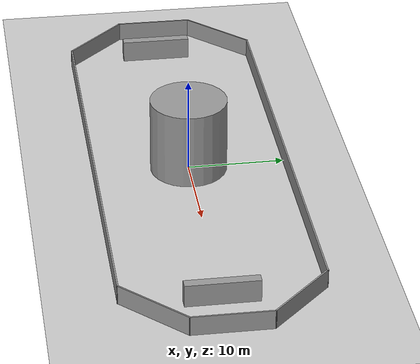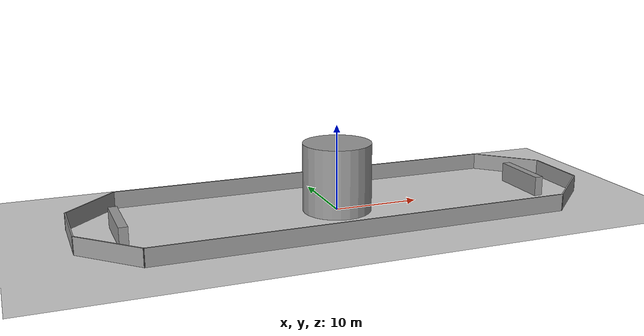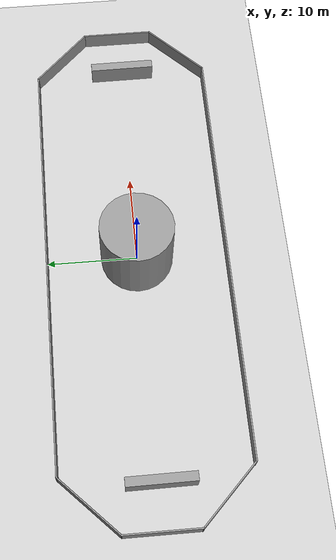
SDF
<sdf version="1.6">
 <world name="default">
  <light name="sun" type="directional">
   <pose>0 0 10 0 -0 0</pose>
   <diffuse>0.8 0.8 0.8 1</diffuse>
   <specular>0.2 0.2 0.2 1</specular>
   <attenuation>
    <range>1000</range>
    <constant>0.9</constant>
    <linear>0.01</linear>
    <quadratic>0.001</quadratic>
   </attenuation>
   <direction>-0.5 0.1 -0.9</direction>
  </light>
  <model name="ground_plane">
   <static>1</static>
   <link name="link">
    <collision name="collision">
     <geometry><plane><normal>0 0 1</normal><size>100 100</size></plane></geometry>
     <surface><friction><ode><mu>100</mu><mu2>50</mu2></ode></friction></surface>
    </collision>
    <visual name="visual">
     <cast_shadows>0</cast_shadows>
     <geometry><plane><normal>0 0 1</normal><size>100 100</size></plane></geometry>
     <material>
      <script><uri>file://media/materials/scripts/gazebo.material</uri><name>Gazebo/Grey</name></script>
     </material>
    </visual>
   </link>
  </model>
  <gravity>0 0 -9.8</gravity>
  <magnetic_field>6e-06 2.3e-05 -4.2e-05</magnetic_field>
  <atmosphere type="adiabatic"/>
  <physics name="default_physics" default="0" type="ode">
   <max_step_size>0.001</max_step_size>
   <real_time_factor>1</real_time_factor>
   <real_time_update_rate>1000</real_time_update_rate>
  </physics>
  <scene><ambient>0.4 0.4 0.4 1</ambient><background>0.7 0.7 0.7 1</background><shadows>1</shadows></scene>
  <spherical_coordinates>
   <surface_model>EARTH_WGS84</surface_model>
   <latitude_deg>0</latitude_deg>
   <longitude_deg>0</longitude_deg>
   <elevation>0</elevation>
   <heading_deg>0</heading_deg>
  </spherical_coordinates>
  <model name="19052514CenterCylin">
   <link name="link">
    <inertial>
     <mass>1</mass>
     <inertia><ixx>0.145833</ixx><ixy>0</ixy><ixz>0</ixz><iyy>0.145833</iyy><iyz>0</iyz><izz>0.125</izz></inertia>
    </inertial>
    <visual name="visual">
     <geometry><cylinder><radius>4</radius><length>8</length></cylinder></geometry>
     <material>
      <script><name>Gazebo/Grey</name><uri>file://media/materials/scripts/gazebo.material</uri></script>
      <shader type="pixel"><normal_map>__default__</normal_map></shader>
      <ambient>1 1 1 1</ambient>
      <diffuse>0.7 0.7 0.7 1</diffuse>
      <specular>0.01 0.01 0.01 1</specular>
      <emissive>0 0 0 1</emissive>
     </material>
    </visual>
    <collision name="collision">
     <geometry><cylinder><radius>4</radius><length>8</length></cylinder></geometry>
     <surface>
      <friction>
       <ode><mu>1</mu><mu2>1</mu2><fdir1>0 0 0</fdir1><slip1>0</slip1><slip2>0</slip2></ode>
       <torsional>
        <coefficient>1</coefficient>
        <patch_radius>0</patch_radius>
        <surface_radius>0</surface_radius>
        <use_patch_radius>1</use_patch_radius>
        <ode><slip>0</slip></ode>
       </torsional>
      </friction>
      <bounce><restitution_coefficient>0</restitution_coefficient><threshold>1e+06</threshold></bounce>
      <contact>
       <collide_without_contact>0</collide_without_contact>
       <collide_without_contact_bitmask>1</collide_without_contact_bitmask>
       <collide_bitmask>1</collide_bitmask>
       <ode>
        <soft_cfm>0</soft_cfm>
        <soft_erp>0.2</soft_erp>
        <kp>1e+13</kp>
        <kd>1</kd>
        <max_vel>0.01</max_vel>
        <min_depth>0</min_depth>
       </ode>
       <bullet>
        <split_impulse>1</split_impulse>
        <split_impulse_penetration_threshold>-0.01</split_impulse_penetration_threshold>
        <soft_cfm>0</soft_cfm>
        <soft_erp>0.2</soft_erp>
        <kp>1e+13</kp>
        <kd>1</kd>
       </bullet>
      </contact>
     </surface>
    </collision>
   </link>
   <static>0</static>
   <pose>-0.000146 -0.000376 4 1e-06 1e-06 8.3e-05</pose>
  </model>
  <model name="19052514EdgeWall_2m">
   <link name="Wall_10">
    <collision name="Wall_10_Collision">
     <geometry><box><size>8.63528 0.15 2</size></box></geometry>
     <pose>0 0 1 0 -0 0</pose>
    </collision>
    <visual name="Wall_10_Visual">
     <pose>0 0 1 0 -0 0</pose>
     <geometry><box><size>8.63528 0.15 2</size></box></geometry>
     <material>
      <script><uri>file://media/materials/scripts/gazebo.material</uri><name>Gazebo/Grey</name></script>
      <ambient>1 1 1 1</ambient>
     </material>
     <meta><layer>0</layer></meta>
    </visual>
    <pose>27 -7 0 0 -0 -2.35619</pose>
   </link>
   <link name="Wall_11">
    <collision name="Wall_11_Collision">
     <geometry><box><size>48.15 0.15 2</size></box></geometry>
     <pose>0 0 1 0 -0 0</pose>
    </collision>
    <visual name="Wall_11_Visual">
     <pose>0 0 1 0 -0 0</pose>
     <geometry><box><size>48.15 0.15 2</size></box></geometry>
     <material>
      <script><uri>file://media/materials/scripts/gazebo.material</uri><name>Gazebo/Grey</name></script>
      <ambient>1 1 1 1</ambient>
     </material>
     <meta><layer>0</layer></meta>
    </visual>
    <pose>0 -10 0 0 -0 3.14159</pose>
   </link>
   <link name="Wall_12">
    <collision name="Wall_12_Collision">
     <geometry><box><size>8.63528 0.15 2</size></box></geometry>
     <pose>0 0 1 0 -0 0</pose>
    </collision>
    <visual name="Wall_12_Visual">
     <pose>0 0 1 0 -0 0</pose>
     <geometry><box><size>8.63528 0.15 2</size></box></geometry>
     <material>
      <script><uri>file://media/materials/scripts/gazebo.material</uri><name>Gazebo/Grey</name></script>
      <ambient>1 1 1 1</ambient>
     </material>
     <meta><layer>0</layer></meta>
    </visual>
    <pose>-27 -7 0 0 -0 2.35619</pose>
   </link>
   <link name="Wall_13">
    <collision name="Wall_13_Collision">
     <geometry><box><size>8.15 0.15 2</size></box></geometry>
     <pose>0 0 1 0 -0 0</pose>
    </collision>
    <visual name="Wall_13_Visual">
     <pose>0 0 1 0 -0 0</pose>
     <geometry><box><size>8.15 0.15 2</size></box></geometry>
     <material>
      <script><uri>file://media/materials/scripts/gazebo.material</uri><name>Gazebo/Grey</name></script>
      <ambient>1 1 1 1</ambient>
     </material>
     <meta><layer>0</layer></meta>
    </visual>
    <pose>-30 0 0 0 -0 1.5708</pose>
   </link>
   <link name="Wall_14">
    <collision name="Wall_14_Collision">
     <geometry><box><size>8.63528 0.15 2</size></box></geometry>
     <pose>0 0 1 0 -0 0</pose>
    </collision>
    <visual name="Wall_14_Visual">
     <pose>0 0 1 0 -0 0</pose>
     <geometry><box><size>8.63528 0.15 2</size></box></geometry>
     <material>
      <script><uri>file://media/materials/scripts/gazebo.material</uri><name>Gazebo/Grey</name></script>
      <ambient>1 1 1 1</ambient>
     </material>
     <meta><layer>0</layer></meta>
    </visual>
    <pose>-27 7 0 0 -0 0.785398</pose>
   </link>
   <link name="Wall_7">
    <collision name="Wall_7_Collision">
     <geometry><box><size>48.15 0.15 2</size></box></geometry>
     <pose>0 0 1 0 -0 0</pose>
    </collision>
    <visual name="Wall_7_Visual">
     <pose>0 0 1 0 -0 0</pose>
     <geometry><box><size>48.15 0.15 2</size></box></geometry>
     <material>
      <script><uri>file://media/materials/scripts/gazebo.material</uri><name>Gazebo/Grey</name></script>
      <ambient>1 1 1 1</ambient>
     </material>
     <meta><layer>0</layer></meta>
    </visual>
    <pose>0 10 0 0 -0 0</pose>
   </link>
   <link name="Wall_8">
    <collision name="Wall_8_Collision">
     <geometry><box><size>8.63528 0.15 2</size></box></geometry>
     <pose>0 0 1 0 -0 0</pose>
    </collision>
    <visual name="Wall_8_Visual">
     <pose>0 0 1 0 -0 0</pose>
     <geometry><box><size>8.63528 0.15 2</size></box></geometry>
     <material>
      <script><uri>file://media/materials/scripts/gazebo.material</uri><name>Gazebo/Grey</name></script>
      <ambient>1 1 1 1</ambient>
     </material>
     <meta><layer>0</layer></meta>
    </visual>
    <pose>27 7 0 0 -0 -0.785398</pose>
   </link>
   <link name="Wall_9">
    <collision name="Wall_9_Collision">
     <geometry><box><size>8.15 0.15 2</size></box></geometry>
     <pose>0 0 1 0 -0 0</pose>
    </collision>
    <visual name="Wall_9_Visual">
     <pose>0 0 1 0 -0 0</pose>
     <geometry><box><size>8.15 0.15 2</size></box></geometry>
     <material>
      <script><uri>file://media/materials/scripts/gazebo.material</uri><name>Gazebo/Grey</name></script>
      <ambient>1 1 1 1</ambient>
     </material>
     <meta><layer>0</layer></meta>
    </visual>
    <pose>30 0 0 0 -0 -1.5708</pose>
   </link>
   <static>1</static>
  </model>
  <model name="unit_box">
   <pose>24.9265 -0.216904 1.15489 -0.002008 1.1e-05 0.005248</pose>
   <link name="link">
    <inertial>
     <mass>1</mass>
     <inertia>
      <ixx>0.166667</ixx>
      <ixy>0</ixy>
      <ixz>0</ixz>
      <iyy>0.166667</iyy>
      <iyz>0</iyz>
      <izz>0.166667</izz>
     </inertia>
    </inertial>
    <collision name="collision"><geometry><box><size>1 7.36817 2.32455</size></box></geometry></collision>
    <visual name="visual">
     <geometry><box><size>1 7.36817 2.32455</size></box></geometry>
     <material>
      <script><name>Gazebo/Grey</name><uri>file://media/materials/scripts/gazebo.material</uri></script>
     </material>
    </visual>
   </link>
  </model>
  <model name="unit_box_clone">
   <pose>-25.0483 -0.38144 1.15489 -0.002008 1.1e-05 0.005248</pose>
   <link name="link">
    <inertial>
     <mass>1</mass>
     <inertia>
      <ixx>0.166667</ixx>
      <ixy>0</ixy>
      <ixz>0</ixz>
      <iyy>0.166667</iyy>
      <iyz>0</iyz>
      <izz>0.166667</izz>
     </inertia>
    </inertial>
    <collision name="collision"><geometry><box><size>1 7.36817 2.32455</size></box></geometry></collision>
    <visual name="visual">
     <geometry><box><size>1 7.36817 2.32455</size></box></geometry>
     <material>
      <script><name>Gazebo/Grey</name><uri>file://media/materials/scripts/gazebo.material</uri></script>
     </material>
    </visual>
   </link>
  </model>
 </world>
</sdf>
